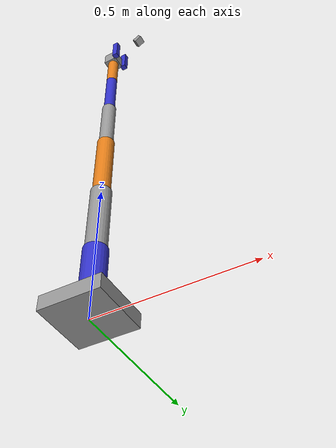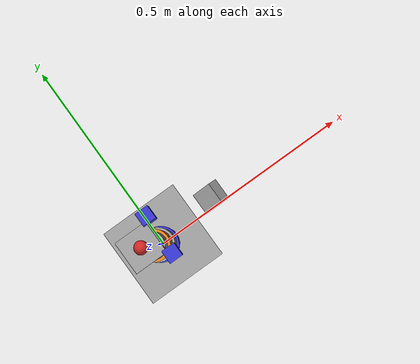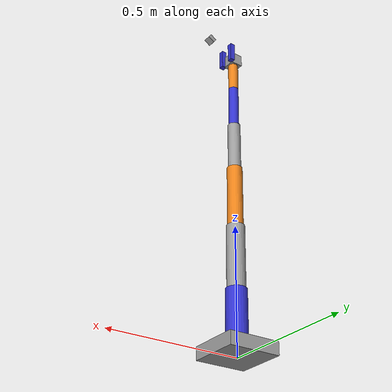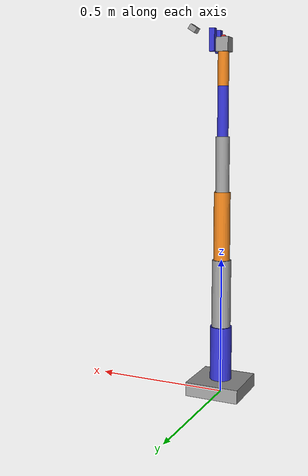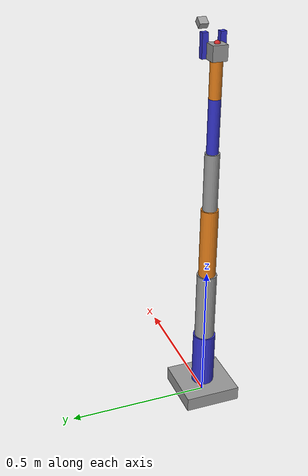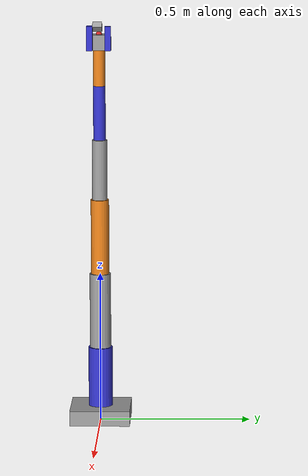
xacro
<?xml version="1.0"?>
<robot name="simple_arm" xmlns:xacro="http://www.ros.org/wiki/xacro">
  <xacro:arg name="ros2_control_params" default=""/>

  <link name="world"/>

  <joint name="world_joint" type="fixed">
    <parent link="world"/>
    <child link="base_link"/>
    <origin xyz="0 0 0" rpy="0 0 0"/>
  </joint>

  <gazebo reference="world_joint">
    <disableFixedJointLumping>true</disableFixedJointLumping>
    <preserveFixedJoint>true</preserveFixedJoint>
  </gazebo>

  <material name="gray">
    <color rgba="0.6 0.6 0.6 1.0"/>
  </material>
  <material name="blue">
    <color rgba="0.2 0.2 0.8 1.0"/>
  </material>
  <material name="orange">
    <color rgba="0.9 0.5 0.1 1.0"/>
  </material>

  <link name="base_link">
    <visual>
      <geometry>
        <box size="0.2 0.2 0.05"/>
      </geometry>
      <origin xyz="0 0 0.025" rpy="0 0 0"/>
      <material name="gray"/>
    </visual>
    <collision>
      <geometry>
        <box size="0.2 0.2 0.05"/>
      </geometry>
      <origin xyz="0 0 0.025" rpy="0 0 0"/>
    </collision>
    <inertial>
      <mass value="3.0"/>
      <origin xyz="0 0 0.025"/>
      <inertia ixx="0.01" ixy="0" ixz="0" iyy="0.01" iyz="0" izz="0.01"/>
    </inertial>
  </link>

  <link name="link1">
    <visual>
      <geometry>
        <cylinder length="0.2" radius="0.04"/>
      </geometry>
      <origin xyz="0 0 0.1" rpy="0 0 0"/>
      <material name="blue"/>
    </visual>
    <collision>
      <geometry>
        <cylinder length="0.2" radius="0.04"/>
      </geometry>
      <origin xyz="0 0 0.1" rpy="0 0 0"/>
    </collision>
    <inertial>
      <mass value="1.0"/>
      <origin xyz="0 0 0.1"/>
      <inertia ixx="0.01" ixy="0" ixz="0" iyy="0.01" iyz="0" izz="0.01"/>
    </inertial>
  </link>

  <link name="link2">
    <visual>
      <geometry>
        <cylinder length="0.25" radius="0.035"/>
      </geometry>
      <origin xyz="0 0 0.125" rpy="0 0 0"/>
      <material name="gray"/>
    </visual>
    <collision>
      <geometry>
        <cylinder length="0.25" radius="0.035"/>
      </geometry>
      <origin xyz="0 0 0.125" rpy="0 0 0"/>
    </collision>
    <inertial>
      <mass value="0.9"/>
      <origin xyz="0 0 0.125"/>
      <inertia ixx="0.008" ixy="0" ixz="0" iyy="0.008" iyz="0" izz="0.008"/>
    </inertial>
  </link>

  <link name="link3">
    <visual>
      <geometry>
        <cylinder length="0.25" radius="0.03"/>
      </geometry>
      <origin xyz="0 0 0.125" rpy="0 0 0"/>
      <material name="orange"/>
    </visual>
    <collision>
      <geometry>
        <cylinder length="0.25" radius="0.03"/>
      </geometry>
      <origin xyz="0 0 0.125" rpy="0 0 0"/>
    </collision>
    <inertial>
      <mass value="0.7"/>
      <origin xyz="0 0 0.125"/>
      <inertia ixx="0.006" ixy="0" ixz="0" iyy="0.006" iyz="0" izz="0.006"/>
    </inertial>
  </link>

  <link name="link4">
    <visual>
      <geometry>
        <cylinder length="0.2" radius="0.025"/>
      </geometry>
      <origin xyz="0 0 0.1" rpy="0 0 0"/>
      <material name="gray"/>
    </visual>
    <collision>
      <geometry>
        <cylinder length="0.2" radius="0.025"/>
      </geometry>
      <origin xyz="0 0 0.1" rpy="0 0 0"/>
    </collision>
    <inertial>
      <mass value="0.5"/>
      <origin xyz="0 0 0.1"/>
      <inertia ixx="0.004" ixy="0" ixz="0" iyy="0.004" iyz="0" izz="0.004"/>
    </inertial>
  </link>

  <link name="link5">
    <visual>
      <geometry>
        <cylinder length="0.18" radius="0.02"/>
      </geometry>
      <origin xyz="0 0 0.09" rpy="0 0 0"/>
      <material name="blue"/>
    </visual>
    <collision>
      <geometry>
        <cylinder length="0.18" radius="0.02"/>
      </geometry>
      <origin xyz="0 0 0.09" rpy="0 0 0"/>
    </collision>
    <inertial>
      <mass value="0.3"/>
      <origin xyz="0 0 0.09"/>
      <inertia ixx="0.003" ixy="0" ixz="0" iyy="0.003" iyz="0" izz="0.003"/>
    </inertial>
  </link>

  <link name="link6">
    <visual>
      <geometry>
        <cylinder length="0.12" radius="0.02"/>
      </geometry>
      <origin xyz="0 0 0.06" rpy="0 0 0"/>
      <material name="orange"/>
    </visual>
    <collision>
      <geometry>
        <cylinder length="0.12" radius="0.02"/>
      </geometry>
      <origin xyz="0 0 0.06" rpy="0 0 0"/>
    </collision>
    <inertial>
      <mass value="0.2"/>
      <origin xyz="0 0 0.06"/>
      <inertia ixx="0.002" ixy="0" ixz="0" iyy="0.002" iyz="0" izz="0.002"/>
    </inertial>
  </link>

  <link name="ee_link">
    <visual>
      <geometry>
        <box size="0.05 0.05 0.05"/>
      </geometry>
      <origin xyz="0 0 0.025" rpy="0 0 0"/>
      <material name="gray"/>
    </visual>
    <collision>
      <geometry>
        <box size="0.05 0.05 0.05"/>
      </geometry>
      <origin xyz="0 0 0.025" rpy="0 0 0"/>
    </collision>
    <inertial>
      <mass value="0.1"/>
      <origin xyz="0 0 0.025"/>
      <inertia ixx="0.001" ixy="0" ixz="0" iyy="0.001" iyz="0" izz="0.001"/>
    </inertial>
  </link>

  <link name="tool0">
    <visual>
      <geometry>
        <sphere radius="0.01"/>
      </geometry>
      <material name="red"/>
    </visual>
  </link>

  <link name="finger_left">
    <visual>
      <geometry>
        <box size="0.02 0.02 0.08"/>
      </geometry>
      <origin xyz="0 0 0.04"/>
      <material name="blue"/>
    </visual>
    <collision>
      <geometry>
        <box size="0.02 0.02 0.08"/>
      </geometry>
      <origin xyz="0 0 0.04"/>
    </collision>
    <inertial>
      <mass value="0.05"/>
      <origin xyz="0 0 0.04"/>
      <inertia ixx="0.0005" ixy="0" ixz="0" iyy="0.0005" iyz="0" izz="0.0005"/>
    </inertial>
  </link>

  <link name="finger_right">
    <visual>
      <geometry>
        <box size="0.02 0.02 0.08"/>
      </geometry>
      <origin xyz="0 0 0.04"/>
      <material name="blue"/>
    </visual>
    <collision>
      <geometry>
        <box size="0.02 0.02 0.08"/>
      </geometry>
      <origin xyz="0 0 0.04"/>
    </collision>
    <inertial>
      <mass value="0.05"/>
      <origin xyz="0 0 0.04"/>
      <inertia ixx="0.0005" ixy="0" ixz="0" iyy="0.0005" iyz="0" izz="0.0005"/>
    </inertial>
  </link>

  <link name="camera_link">
    <visual>
      <geometry>
        <box size="0.03 0.03 0.02"/>
      </geometry>
      <origin xyz="0 0 0.01" rpy="0 0 0"/>
      <material name="gray"/>
    </visual>
    <inertial>
      <mass value="0.05"/>
      <origin xyz="0 0 0.01"/>
      <inertia ixx="0.0001" ixy="0" ixz="0" iyy="0.0001" iyz="0" izz="0.0001"/>
    </inertial>
  </link>

  <joint name="joint1" type="revolute">
    <parent link="base_link"/>
    <child link="link1"/>
    <origin xyz="0 0 0.05" rpy="0 0 0"/>
    <axis xyz="0 0 1"/>
    <limit lower="-3.141592653589793" upper="3.141592653589793" effort="50" velocity="1.5"/>
  </joint>

  <joint name="joint2" type="revolute">
    <parent link="link1"/>
    <child link="link2"/>
    <origin xyz="0 0 0.2" rpy="0 0 0"/>
    <axis xyz="0 1 0"/>
    <limit lower="-1.57079632679" upper="1.57079632679" effort="50" velocity="1.5"/>
  </joint>

  <joint name="joint3" type="revolute">
    <parent link="link2"/>
    <child link="link3"/>
    <origin xyz="0 0 0.25" rpy="0 0 0"/>
    <axis xyz="0 1 0"/>
    <limit lower="-1.57079632679" upper="1.57079632679" effort="40" velocity="1.5"/>
  </joint>

  <joint name="joint4" type="revolute">
    <parent link="link3"/>
    <child link="link4"/>
    <origin xyz="0 0 0.25" rpy="0 0 0"/>
    <axis xyz="1 0 0"/>
    <limit lower="-3.141592653589793" upper="3.141592653589793" effort="30" velocity="2.0"/>
  </joint>

  <joint name="joint5" type="revolute">
    <parent link="link4"/>
    <child link="link5"/>
    <origin xyz="0 0 0.2" rpy="0 0 0"/>
    <axis xyz="0 1 0"/>
    <limit lower="-3.141592653589793" upper="3.141592653589793" effort="20" velocity="2.0"/>
  </joint>

  <joint name="joint6" type="revolute">
    <parent link="link5"/>
    <child link="link6"/>
    <origin xyz="0 0 0.18" rpy="0 0 0"/>
    <axis xyz="1 0 0"/>
    <limit lower="-3.141592653589793" upper="3.141592653589793" effort="15" velocity="2.5"/>
  </joint>

  <joint name="ee_joint" type="fixed">
    <parent link="link6"/>
    <child link="ee_link"/>
    <origin xyz="0 0 0.12" rpy="0 0 0"/>
  </joint>

  <joint name="tool0_joint" type="fixed">
    <parent link="ee_link"/>
    <child link="tool0"/>
    <origin xyz="0 0 0.05" rpy="0 0 0"/>
  </joint>

  <joint name="finger_left_joint" type="prismatic">
    <parent link="ee_link"/>
    <child link="finger_left"/>
    <origin xyz="0.03 0.03 0" rpy="0 0 0"/>
    <axis xyz="0 0 1"/>
    <limit lower="-0.01" upper="0.04" effort="10" velocity="0.2"/>
  </joint>

  <joint name="finger_right_joint" type="prismatic">
    <parent link="ee_link"/>
    <child link="finger_right"/>
    <origin xyz="0.03 -0.03 0" rpy="0 0 0"/>
    <axis xyz="0 0 1"/>
    <limit lower="-0.01" upper="0.04" effort="10" velocity="0.2"/>
  </joint>

  <joint name="camera_joint" type="fixed">
    <parent link="ee_link"/>
    <child link="camera_link"/>
    <origin xyz="0.12 0.0 0.08" rpy="0 -0.6 0"/>
  </joint>

  <gazebo reference="camera_link">
    <sensor name="camera" type="camera">
      <update_rate>30</update_rate>
      <camera>
        <horizontal_fov>0.8</horizontal_fov>
        <image>
          <width>640</width>
          <height>480</height>
          <format>R8G8B8</format>
        </image>
        <clip>
          <near>0.05</near>
          <far>10.0</far>
        </clip>
      </camera>
      <plugin name="gazebo_ros_camera" filename="libgazebo_ros_camera.so">
        <ros>
          <namespace>/camera</namespace>
        </ros>
        <camera_name>color</camera_name>
        <image_topic_name>image_raw</image_topic_name>
        <camera_info_topic_name>camera_info</camera_info_topic_name>
        <frame_name>camera_link</frame_name>
      </plugin>
    </sensor>
  </gazebo>

  <!-- Overhead camera sensors are defined in the Gazebo world for stable pose control. -->

  <ros2_control name="ArmSystem" type="system">
    <hardware>
      <plugin>gazebo_ros2_control/GazeboSystem</plugin>
    </hardware>
    <joint name="joint1">
      <command_interface name="position"/>
      <state_interface name="position"/>
      <state_interface name="velocity"/>
    </joint>
    <joint name="joint2">
      <command_interface name="position"/>
      <state_interface name="position"/>
      <state_interface name="velocity"/>
    </joint>
    <joint name="joint3">
      <command_interface name="position"/>
      <state_interface name="position"/>
      <state_interface name="velocity"/>
    </joint>
    <joint name="joint4">
      <command_interface name="position"/>
      <state_interface name="position"/>
      <state_interface name="velocity"/>
    </joint>
    <joint name="joint5">
      <command_interface name="position"/>
      <state_interface name="position"/>
      <state_interface name="velocity"/>
    </joint>
    <joint name="joint6">
      <command_interface name="position"/>
      <state_interface name="position"/>
      <state_interface name="velocity"/>
    </joint>
    <joint name="finger_left_joint">
      <command_interface name="position"/>
      <state_interface name="position"/>
      <state_interface name="velocity"/>
    </joint>
    <joint name="finger_right_joint">
      <command_interface name="position"/>
      <state_interface name="position"/>
      <state_interface name="velocity"/>
    </joint>
  </ros2_control>

  <transmission name="joint1_trans">
    <type>transmission_interface/SimpleTransmission</type>
    <joint name="joint1">
      <hardwareInterface>hardware_interface/PositionJointInterface</hardwareInterface>
    </joint>
    <actuator name="joint1_motor">
      <hardwareInterface>hardware_interface/PositionJointInterface</hardwareInterface>
      <mechanicalReduction>1</mechanicalReduction>
    </actuator>
  </transmission>
  <transmission name="joint2_trans">
    <type>transmission_interface/SimpleTransmission</type>
    <joint name="joint2">
      <hardwareInterface>hardware_interface/PositionJointInterface</hardwareInterface>
    </joint>
    <actuator name="joint2_motor">
      <hardwareInterface>hardware_interface/PositionJointInterface</hardwareInterface>
      <mechanicalReduction>1</mechanicalReduction>
    </actuator>
  </transmission>
  <transmission name="joint3_trans">
    <type>transmission_interface/SimpleTransmission</type>
    <joint name="joint3">
      <hardwareInterface>hardware_interface/PositionJointInterface</hardwareInterface>
    </joint>
    <actuator name="joint3_motor">
      <hardwareInterface>hardware_interface/PositionJointInterface</hardwareInterface>
      <mechanicalReduction>1</mechanicalReduction>
    </actuator>
  </transmission>
  <transmission name="joint4_trans">
    <type>transmission_interface/SimpleTransmission</type>
    <joint name="joint4">
      <hardwareInterface>hardware_interface/PositionJointInterface</hardwareInterface>
    </joint>
    <actuator name="joint4_motor">
      <hardwareInterface>hardware_interface/PositionJointInterface</hardwareInterface>
      <mechanicalReduction>1</mechanicalReduction>
    </actuator>
  </transmission>
  <transmission name="joint5_trans">
    <type>transmission_interface/SimpleTransmission</type>
    <joint name="joint5">
      <hardwareInterface>hardware_interface/PositionJointInterface</hardwareInterface>
    </joint>
    <actuator name="joint5_motor">
      <hardwareInterface>hardware_interface/PositionJointInterface</hardwareInterface>
      <mechanicalReduction>1</mechanicalReduction>
    </actuator>
  </transmission>
  <transmission name="joint6_trans">
    <type>transmission_interface/SimpleTransmission</type>
    <joint name="joint6">
      <hardwareInterface>hardware_interface/PositionJointInterface</hardwareInterface>
    </joint>
    <actuator name="joint6_motor">
      <hardwareInterface>hardware_interface/PositionJointInterface</hardwareInterface>
      <mechanicalReduction>1</mechanicalReduction>
    </actuator>
  </transmission>
  <transmission name="finger_left_trans">
    <type>transmission_interface/SimpleTransmission</type>
    <joint name="finger_left_joint">
      <hardwareInterface>hardware_interface/PositionJointInterface</hardwareInterface>
    </joint>
    <actuator name="finger_left_motor">
      <hardwareInterface>hardware_interface/PositionJointInterface</hardwareInterface>
      <mechanicalReduction>1</mechanicalReduction>
    </actuator>
  </transmission>
  <transmission name="finger_right_trans">
    <type>transmission_interface/SimpleTransmission</type>
    <joint name="finger_right_joint">
      <hardwareInterface>hardware_interface/PositionJointInterface</hardwareInterface>
    </joint>
    <actuator name="finger_right_motor">
      <hardwareInterface>hardware_interface/PositionJointInterface</hardwareInterface>
      <mechanicalReduction>1</mechanicalReduction>
    </actuator>
  </transmission>

  <gazebo>
    <plugin name="gazebo_ros2_control" filename="libgazebo_ros2_control.so">
      <parameters>$(arg ros2_control_params)</parameters>
    </plugin>
  </gazebo>
</robot>
